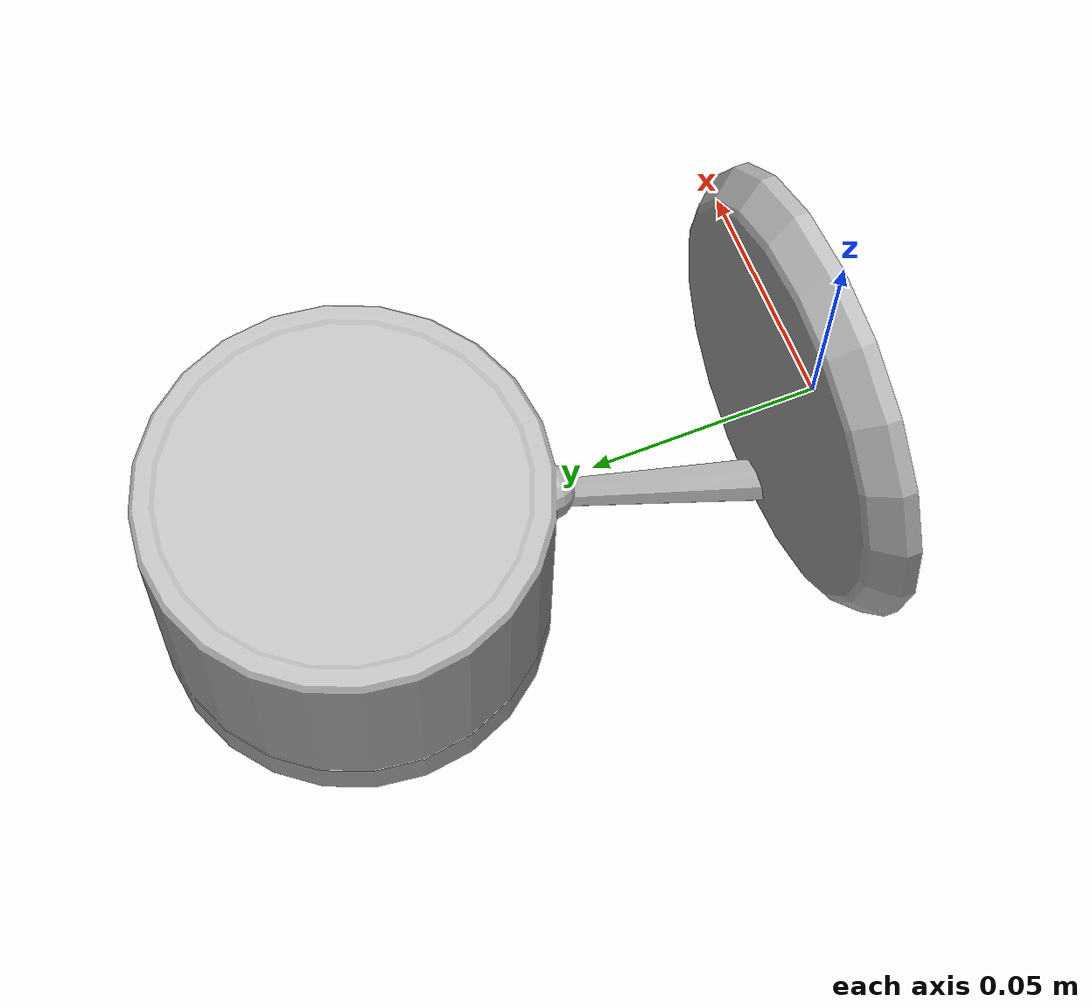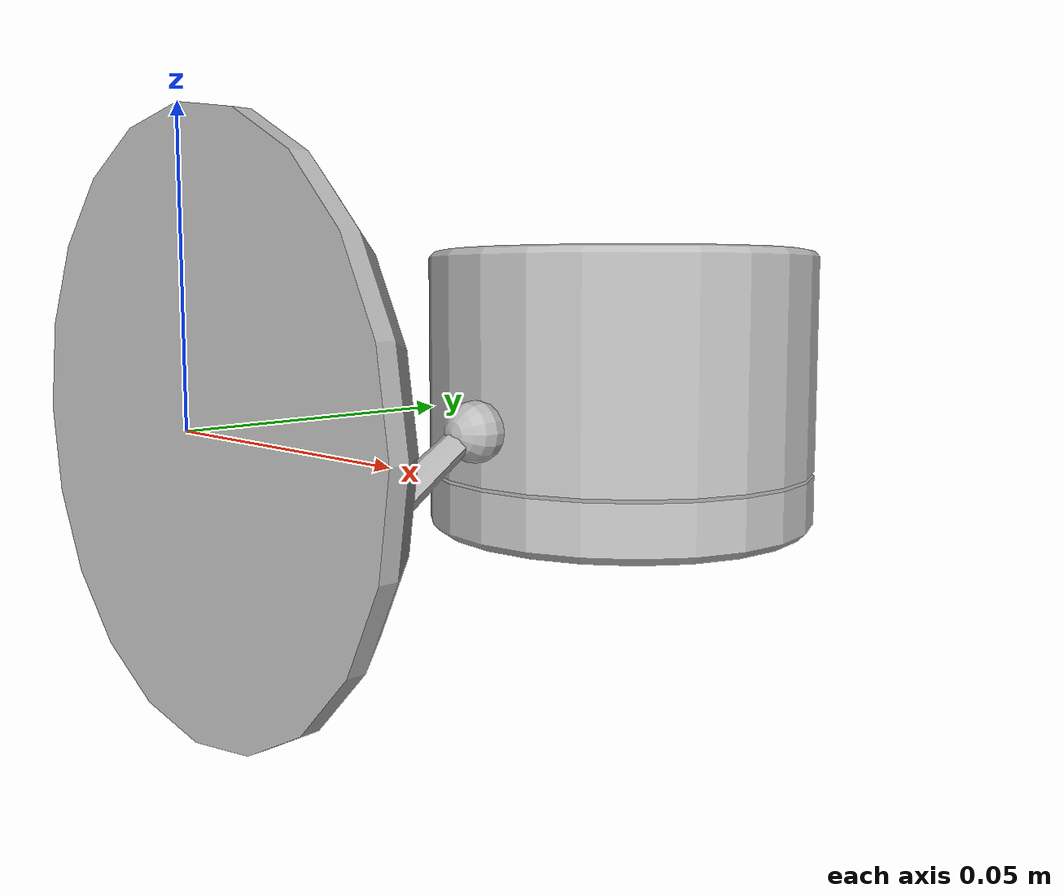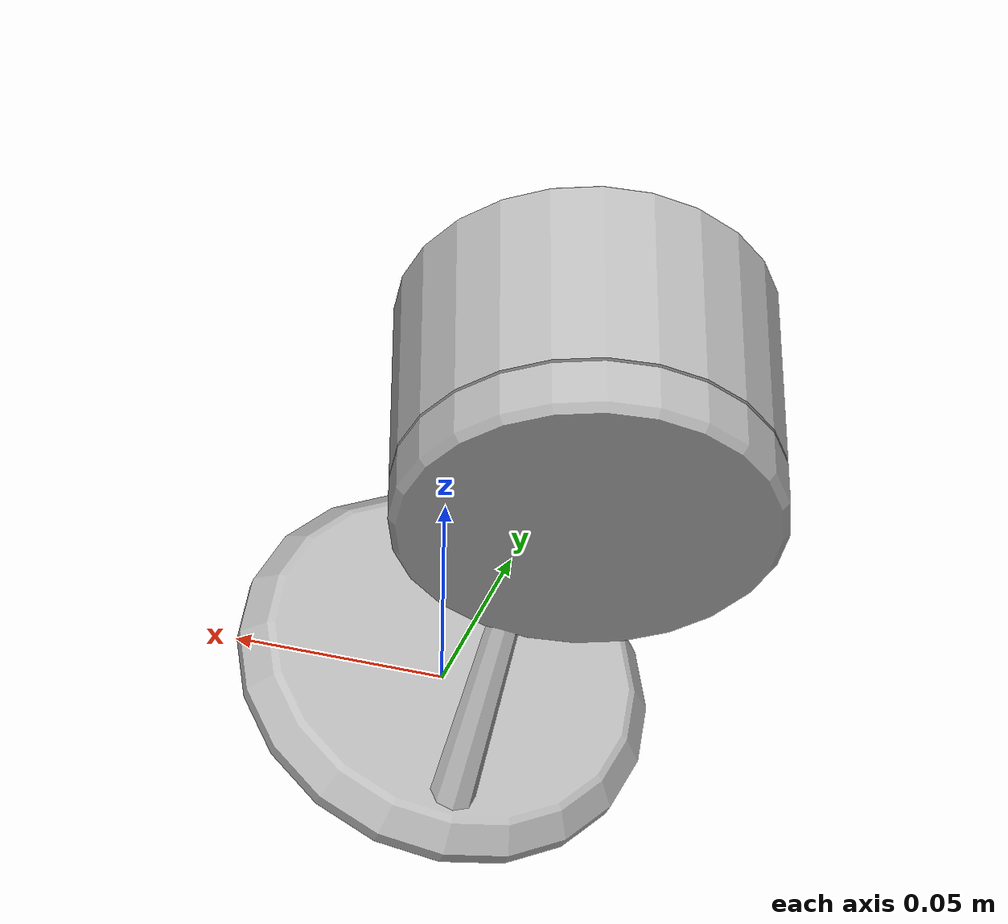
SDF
<?xml version="1.0" ?>
<sdf version="1.6">
  <model name="aws_robomaker_residential_SecurityCamera_01">
    <link name="link">
      <inertial>
        <mass>1</mass>
        <inertia>
          <ixx>18.2222</ixx>
          <ixy>0</ixy>
          <ixz>0</ixz>
          <iyy>18.2222</iyy>
          <iyz>0</iyz>
          <izz>0.0018767</izz>
        </inertia>
      </inertial>
      <collision name="collision">
        <geometry>
          <mesh>
<uri>model://aws_robomaker_residential_SecurityCamera_01/meshes/object.obj</uri>
            <scale>1 1 1</scale>
          </mesh>
        </geometry>
      </collision>
      <visual name="visual">
	    <geometry>
          <mesh>
<uri>model://aws_robomaker_residential_SecurityCamera_01/meshes/object.obj</uri>
          </mesh>
        </geometry>
        <meta>
          <layer>2</layer>
        </meta>
      </visual>
    </link>
  </model>
</sdf>
